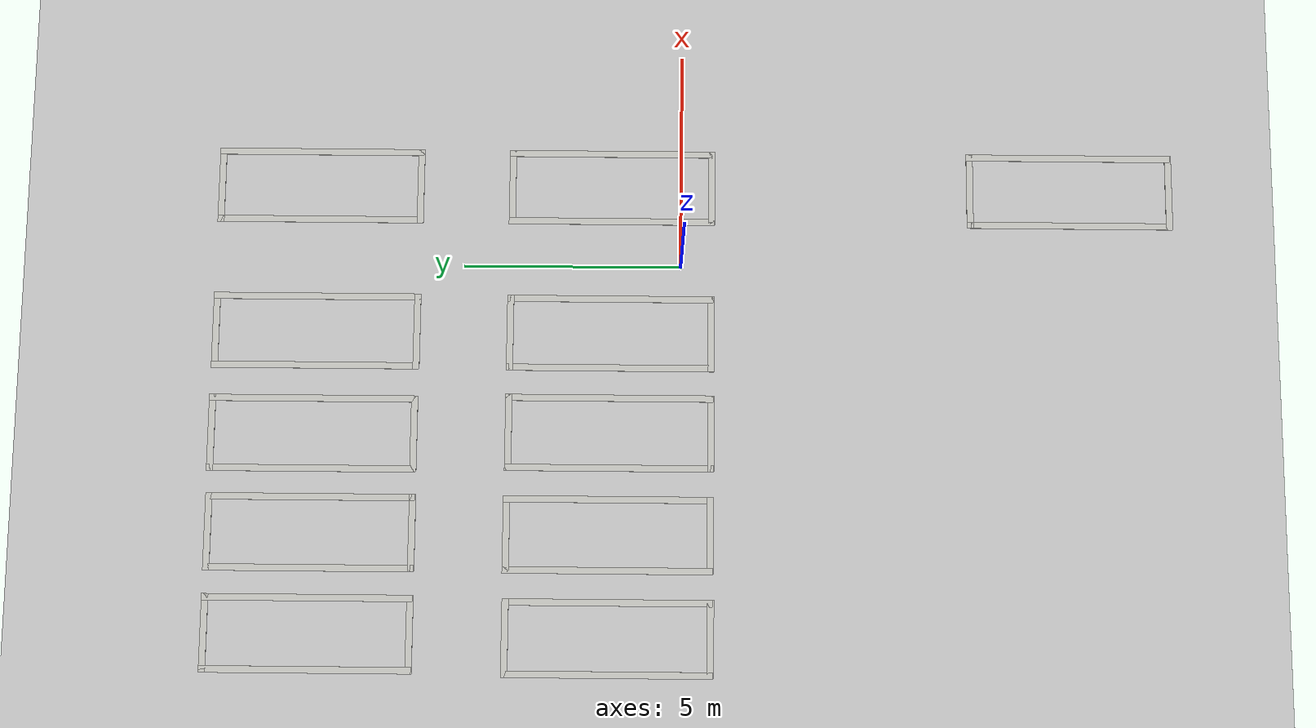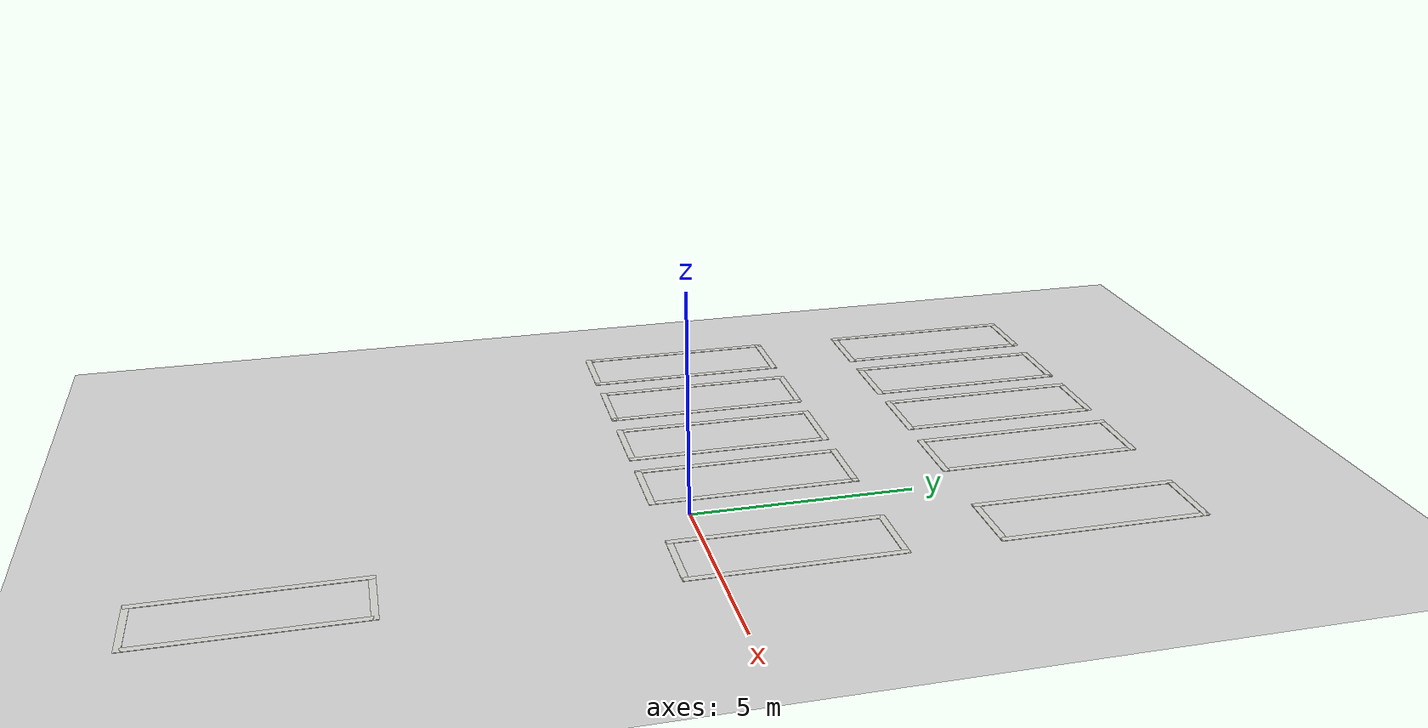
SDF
<sdf version="1.6">
 <world name="default">
  <model name="ground_plane">
   <static>1</static>
   <link name="link">
    <collision name="collision">
     <geometry><plane><normal>0 0 1</normal><size>100 100</size></plane></geometry>
     <surface>
      <contact><collide_bitmask>65535</collide_bitmask></contact>
      <friction><ode><mu>100</mu><mu2>50</mu2></ode></friction>
     </surface>
    </collision>
    <visual name="visual">
     <cast_shadows>0</cast_shadows>
     <geometry><plane><normal>0 0 1</normal><size>100 100</size></plane></geometry>
     <material>
      <script><uri>file://media/materials/scripts/gazebo.material</uri><name>Gazebo/Grey</name></script>
     </material>
    </visual>
   </link>
  </model>
  <model name="box_front">
   <pose>-8.45362 1.60304 0 0 -0 0</pose>
   <link name="Wall_3">
    <collision name="Wall_3_Collision"><geometry><box><size>0 0 0</size></box></geometry></collision>
    <visual name="Wall_3_Visual">
     <geometry><box><size>1.75 0.15 0.01</size></box></geometry>
     <material>
      <script><uri>file://media/materials/scripts/gazebo.material</uri><name>Gazebo/CeilingTiled</name></script>
      <ambient>1 1 1 1</ambient>
     </material>
     <meta><layer>0</layer></meta>
    </visual>
    <pose>0 2.31006 0 0 -0 0</pose>
   </link>
   <link name="Wall_4">
    <collision name="Wall_4_Collision"><geometry><box><size>0 0 0</size></box></geometry></collision>
    <visual name="Wall_4_Visual">
     <geometry><box><size>4.75 0.15 0.01</size></box></geometry>
     <material>
      <script><uri>file://media/materials/scripts/gazebo.material</uri><name>Gazebo/CeilingTiled</name></script>
      <ambient>1 1 1 1</ambient>
     </material>
     <meta><layer>0</layer></meta>
    </visual>
    <pose>0.8 0.010056 0 0 -0 -1.5708</pose>
   </link>
   <link name="Wall_5">
    <collision name="Wall_5_Collision">
     <geometry><box><size>0 0 0</size></box></geometry>
     <pose>0 0 1.25 0 -0 0</pose>
    </collision>
    <visual name="Wall_5_Visual">
     <geometry><box><size>1.75 0.15 0.01</size></box></geometry>
     <material>
      <script><uri>file://media/materials/scripts/gazebo.material</uri><name>Gazebo/CeilingTiled</name></script>
      <ambient>1 1 1 1</ambient>
     </material>
     <meta><layer>0</layer></meta>
    </visual>
    <pose>0 -2.31006 0 0 -0 3.14159</pose>
   </link>
   <link name="Wall_7">
    <collision name="Wall_7_Collision">
     <geometry><box><size>0 0 0</size></box></geometry>
     <pose>0 0 1.25 0 -0 0</pose>
    </collision>
    <visual name="Wall_7_Visual">
     <geometry><box><size>4.75 0.15 0.01</size></box></geometry>
     <material>
      <script><uri>file://media/materials/scripts/gazebo.material</uri><name>Gazebo/CeilingTiled</name></script>
      <ambient>1 1 1 1</ambient>
     </material>
     <meta><layer>0</layer></meta>
    </visual>
    <pose>-0.8 0.010056 0 0 -0 -1.5708</pose>
   </link>
   <static>1</static>
  </model>
  <model name="box_front_0">
   <pose>-6.13833 1.61718 0 0 -0 0</pose>
   <link name="Wall_3">
    <collision name="Wall_3_Collision"><geometry><box><size>0 0 0</size></box></geometry></collision>
    <visual name="Wall_3_Visual">
     <geometry><box><size>1.75 0.15 0.01</size></box></geometry>
     <material>
      <script><uri>file://media/materials/scripts/gazebo.material</uri><name>Gazebo/CeilingTiled</name></script>
      <ambient>1 1 1 1</ambient>
     </material>
     <meta><layer>0</layer></meta>
    </visual>
    <pose>0 2.31006 0 0 -0 0</pose>
   </link>
   <link name="Wall_4">
    <collision name="Wall_4_Collision"><geometry><box><size>0 0 0</size></box></geometry></collision>
    <visual name="Wall_4_Visual">
     <geometry><box><size>4.75 0.15 0.01</size></box></geometry>
     <material>
      <script><uri>file://media/materials/scripts/gazebo.material</uri><name>Gazebo/CeilingTiled</name></script>
      <ambient>1 1 1 1</ambient>
     </material>
     <meta><layer>0</layer></meta>
    </visual>
    <pose>0.8 0.010056 0 0 -0 -1.5708</pose>
   </link>
   <link name="Wall_5">
    <collision name="Wall_5_Collision">
     <geometry><box><size>0 0 0</size></box></geometry>
     <pose>0 0 1.25 0 -0 0</pose>
    </collision>
    <visual name="Wall_5_Visual">
     <geometry><box><size>1.75 0.15 0.01</size></box></geometry>
     <material>
      <script><uri>file://media/materials/scripts/gazebo.material</uri><name>Gazebo/CeilingTiled</name></script>
      <ambient>1 1 1 1</ambient>
     </material>
     <meta><layer>0</layer></meta>
    </visual>
    <pose>0 -2.31006 0 0 -0 3.14159</pose>
   </link>
   <link name="Wall_7">
    <collision name="Wall_7_Collision">
     <geometry><box><size>0 0 0</size></box></geometry>
     <pose>0 0 1.25 0 -0 0</pose>
    </collision>
    <visual name="Wall_7_Visual">
     <geometry><box><size>4.75 0.15 0.01</size></box></geometry>
     <material>
      <script><uri>file://media/materials/scripts/gazebo.material</uri><name>Gazebo/CeilingTiled</name></script>
      <ambient>1 1 1 1</ambient>
     </material>
     <meta><layer>0</layer></meta>
    </visual>
    <pose>-0.8 0.010056 0 0 -0 -1.5708</pose>
   </link>
   <static>1</static>
  </model>
  <model name="box_front_1">
   <pose>-3.82381 1.6108 0 0 -0 0</pose>
   <link name="Wall_3">
    <collision name="Wall_3_Collision"><geometry><box><size>0 0 0</size></box></geometry></collision>
    <visual name="Wall_3_Visual">
     <geometry><box><size>1.75 0.15 0.01</size></box></geometry>
     <material>
      <script><uri>file://media/materials/scripts/gazebo.material</uri><name>Gazebo/CeilingTiled</name></script>
      <ambient>1 1 1 1</ambient>
     </material>
     <meta><layer>0</layer></meta>
    </visual>
    <pose>0 2.31006 0 0 -0 0</pose>
   </link>
   <link name="Wall_4">
    <collision name="Wall_4_Collision"><geometry><box><size>0 0 0</size></box></geometry></collision>
    <visual name="Wall_4_Visual">
     <geometry><box><size>4.75 0.15 0.01</size></box></geometry>
     <material>
      <script><uri>file://media/materials/scripts/gazebo.material</uri><name>Gazebo/CeilingTiled</name></script>
      <ambient>1 1 1 1</ambient>
     </material>
     <meta><layer>0</layer></meta>
    </visual>
    <pose>0.8 0.010056 0 0 -0 -1.5708</pose>
   </link>
   <link name="Wall_5">
    <collision name="Wall_5_Collision">
     <geometry><box><size>0 0 0</size></box></geometry>
     <pose>0 0 1.25 0 -0 0</pose>
    </collision>
    <visual name="Wall_5_Visual">
     <geometry><box><size>1.75 0.15 0.01</size></box></geometry>
     <material>
      <script><uri>file://media/materials/scripts/gazebo.material</uri><name>Gazebo/CeilingTiled</name></script>
      <ambient>1 1 1 1</ambient>
     </material>
     <meta><layer>0</layer></meta>
    </visual>
    <pose>0 -2.31006 0 0 -0 3.14159</pose>
   </link>
   <link name="Wall_7">
    <collision name="Wall_7_Collision">
     <geometry><box><size>0 0 0</size></box></geometry>
     <pose>0 0 1.25 0 -0 0</pose>
    </collision>
    <visual name="Wall_7_Visual">
     <geometry><box><size>4.75 0.15 0.01</size></box></geometry>
     <material>
      <script><uri>file://media/materials/scripts/gazebo.material</uri><name>Gazebo/CeilingTiled</name></script>
      <ambient>1 1 1 1</ambient>
     </material>
     <meta><layer>0</layer></meta>
    </visual>
    <pose>-0.8 0.010056 0 0 -0 -1.5708</pose>
   </link>
   <static>1</static>
  </model>
  <model name="box_front_2">
   <pose>-1.52601 1.61411 0 0 -0 0</pose>
   <link name="Wall_3">
    <collision name="Wall_3_Collision"><geometry><box><size>0 0 0</size></box></geometry></collision>
    <visual name="Wall_3_Visual">
     <geometry><box><size>1.75 0.15 0.01</size></box></geometry>
     <material>
      <script><uri>file://media/materials/scripts/gazebo.material</uri><name>Gazebo/CeilingTiled</name></script>
      <ambient>1 1 1 1</ambient>
     </material>
     <meta><layer>0</layer></meta>
    </visual>
    <pose>0 2.31006 0 0 -0 0</pose>
   </link>
   <link name="Wall_4">
    <collision name="Wall_4_Collision"><geometry><box><size>0 0 0</size></box></geometry></collision>
    <visual name="Wall_4_Visual">
     <geometry><box><size>4.75 0.15 0.01</size></box></geometry>
     <material>
      <script><uri>file://media/materials/scripts/gazebo.material</uri><name>Gazebo/CeilingTiled</name></script>
      <ambient>1 1 1 1</ambient>
     </material>
     <meta><layer>0</layer></meta>
    </visual>
    <pose>0.8 0.010056 0 0 -0 -1.5708</pose>
   </link>
   <link name="Wall_5">
    <collision name="Wall_5_Collision">
     <geometry><box><size>0 0 0</size></box></geometry>
     <pose>0 0 1.25 0 -0 0</pose>
    </collision>
    <visual name="Wall_5_Visual">
     <geometry><box><size>1.75 0.15 0.01</size></box></geometry>
     <material>
      <script><uri>file://media/materials/scripts/gazebo.material</uri><name>Gazebo/CeilingTiled</name></script>
      <ambient>1 1 1 1</ambient>
     </material>
     <meta><layer>0</layer></meta>
    </visual>
    <pose>0 -2.31006 0 0 -0 3.14159</pose>
   </link>
   <link name="Wall_7">
    <collision name="Wall_7_Collision">
     <geometry><box><size>0 0 0</size></box></geometry>
     <pose>0 0 1.25 0 -0 0</pose>
    </collision>
    <visual name="Wall_7_Visual">
     <geometry><box><size>4.75 0.15 0.01</size></box></geometry>
     <material>
      <script><uri>file://media/materials/scripts/gazebo.material</uri><name>Gazebo/CeilingTiled</name></script>
      <ambient>1 1 1 1</ambient>
     </material>
     <meta><layer>0</layer></meta>
    </visual>
    <pose>-0.8 0.010056 0 0 -0 -1.5708</pose>
   </link>
   <static>1</static>
  </model>
  <model name="box_front_2_clone">
   <pose>-1.5174 8.37634 0 0 -0 0</pose>
   <link name="Wall_3">
    <collision name="Wall_3_Collision"><geometry><box><size>0 0 0</size></box></geometry></collision>
    <visual name="Wall_3_Visual">
     <geometry><box><size>1.75 0.15 0.01</size></box></geometry>
     <material>
      <script><uri>file://media/materials/scripts/gazebo.material</uri><name>Gazebo/CeilingTiled</name></script>
      <ambient>1 1 1 1</ambient>
     </material>
     <meta><layer>0</layer></meta>
    </visual>
    <pose>0 2.31006 0 0 -0 0</pose>
   </link>
   <link name="Wall_4">
    <collision name="Wall_4_Collision"><geometry><box><size>0 0 0</size></box></geometry></collision>
    <visual name="Wall_4_Visual">
     <geometry><box><size>4.75 0.15 0.01</size></box></geometry>
     <material>
      <script><uri>file://media/materials/scripts/gazebo.material</uri><name>Gazebo/CeilingTiled</name></script>
      <ambient>1 1 1 1</ambient>
     </material>
     <meta><layer>0</layer></meta>
    </visual>
    <pose>0.8 0.010056 0 0 -0 -1.5708</pose>
   </link>
   <link name="Wall_5">
    <collision name="Wall_5_Collision">
     <geometry><box><size>0 0 0</size></box></geometry>
     <pose>0 0 1.25 0 -0 0</pose>
    </collision>
    <visual name="Wall_5_Visual">
     <geometry><box><size>1.75 0.15 0.01</size></box></geometry>
     <material>
      <script><uri>file://media/materials/scripts/gazebo.material</uri><name>Gazebo/CeilingTiled</name></script>
      <ambient>1 1 1 1</ambient>
     </material>
     <meta><layer>0</layer></meta>
    </visual>
    <pose>0 -2.31006 0 0 -0 3.14159</pose>
   </link>
   <link name="Wall_7">
    <collision name="Wall_7_Collision">
     <geometry><box><size>0 0 0</size></box></geometry>
     <pose>0 0 1.25 0 -0 0</pose>
    </collision>
    <visual name="Wall_7_Visual">
     <geometry><box><size>4.75 0.15 0.01</size></box></geometry>
     <material>
      <script><uri>file://media/materials/scripts/gazebo.material</uri><name>Gazebo/CeilingTiled</name></script>
      <ambient>1 1 1 1</ambient>
     </material>
     <meta><layer>0</layer></meta>
    </visual>
    <pose>-0.8 0.010056 0 0 -0 -1.5708</pose>
   </link>
   <static>1</static>
  </model>
  <model name="box_front_2_clone_clone">
   <pose>-3.88353 8.38304 0 0 -0 0</pose>
   <link name="Wall_3">
    <collision name="Wall_3_Collision"><geometry><box><size>0 0 0</size></box></geometry></collision>
    <visual name="Wall_3_Visual">
     <geometry><box><size>1.75 0.15 0.01</size></box></geometry>
     <material>
      <script><uri>file://media/materials/scripts/gazebo.material</uri><name>Gazebo/CeilingTiled</name></script>
      <ambient>1 1 1 1</ambient>
     </material>
     <meta><layer>0</layer></meta>
    </visual>
    <pose>0 2.31006 0 0 -0 0</pose>
   </link>
   <link name="Wall_4">
    <collision name="Wall_4_Collision"><geometry><box><size>0 0 0</size></box></geometry></collision>
    <visual name="Wall_4_Visual">
     <geometry><box><size>4.75 0.15 0.01</size></box></geometry>
     <material>
      <script><uri>file://media/materials/scripts/gazebo.material</uri><name>Gazebo/CeilingTiled</name></script>
      <ambient>1 1 1 1</ambient>
     </material>
     <meta><layer>0</layer></meta>
    </visual>
    <pose>0.8 0.010056 0 0 -0 -1.5708</pose>
   </link>
   <link name="Wall_5">
    <collision name="Wall_5_Collision">
     <geometry><box><size>0 0 0</size></box></geometry>
     <pose>0 0 1.25 0 -0 0</pose>
    </collision>
    <visual name="Wall_5_Visual">
     <geometry><box><size>1.75 0.15 0.01</size></box></geometry>
     <material>
      <script><uri>file://media/materials/scripts/gazebo.material</uri><name>Gazebo/CeilingTiled</name></script>
      <ambient>1 1 1 1</ambient>
     </material>
     <meta><layer>0</layer></meta>
    </visual>
    <pose>0 -2.31006 0 0 -0 3.14159</pose>
   </link>
   <link name="Wall_7">
    <collision name="Wall_7_Collision">
     <geometry><box><size>0 0 0</size></box></geometry>
     <pose>0 0 1.25 0 -0 0</pose>
    </collision>
    <visual name="Wall_7_Visual">
     <geometry><box><size>4.75 0.15 0.01</size></box></geometry>
     <material>
      <script><uri>file://media/materials/scripts/gazebo.material</uri><name>Gazebo/CeilingTiled</name></script>
      <ambient>1 1 1 1</ambient>
     </material>
     <meta><layer>0</layer></meta>
    </visual>
    <pose>-0.8 0.010056 0 0 -0 -1.5708</pose>
   </link>
   <static>1</static>
  </model>
  <model name="box_front_2_clone_clone_clone">
   <pose>-6.1307 8.36924 0 0 -0 0</pose>
   <link name="Wall_3">
    <collision name="Wall_3_Collision"><geometry><box><size>0 0 0</size></box></geometry></collision>
    <visual name="Wall_3_Visual">
     <geometry><box><size>1.75 0.15 0.01</size></box></geometry>
     <material>
      <script><uri>file://media/materials/scripts/gazebo.material</uri><name>Gazebo/CeilingTiled</name></script>
      <ambient>1 1 1 1</ambient>
     </material>
     <meta><layer>0</layer></meta>
    </visual>
    <pose>0 2.31006 0 0 -0 0</pose>
   </link>
   <link name="Wall_4">
    <collision name="Wall_4_Collision"><geometry><box><size>0 0 0</size></box></geometry></collision>
    <visual name="Wall_4_Visual">
     <geometry><box><size>4.75 0.15 0.01</size></box></geometry>
     <material>
      <script><uri>file://media/materials/scripts/gazebo.material</uri><name>Gazebo/CeilingTiled</name></script>
      <ambient>1 1 1 1</ambient>
     </material>
     <meta><layer>0</layer></meta>
    </visual>
    <pose>0.8 0.010056 0 0 -0 -1.5708</pose>
   </link>
   <link name="Wall_5">
    <collision name="Wall_5_Collision">
     <geometry><box><size>0 0 0</size></box></geometry>
     <pose>0 0 1.25 0 -0 0</pose>
    </collision>
    <visual name="Wall_5_Visual">
     <geometry><box><size>1.75 0.15 0.01</size></box></geometry>
     <material>
      <script><uri>file://media/materials/scripts/gazebo.material</uri><name>Gazebo/CeilingTiled</name></script>
      <ambient>1 1 1 1</ambient>
     </material>
     <meta><layer>0</layer></meta>
    </visual>
    <pose>0 -2.31006 0 0 -0 3.14159</pose>
   </link>
   <link name="Wall_7">
    <collision name="Wall_7_Collision">
     <geometry><box><size>0 0 0</size></box></geometry>
     <pose>0 0 1.25 0 -0 0</pose>
    </collision>
    <visual name="Wall_7_Visual">
     <geometry><box><size>4.75 0.15 0.01</size></box></geometry>
     <material>
      <script><uri>file://media/materials/scripts/gazebo.material</uri><name>Gazebo/CeilingTiled</name></script>
      <ambient>1 1 1 1</ambient>
     </material>
     <meta><layer>0</layer></meta>
    </visual>
    <pose>-0.8 0.010056 0 0 -0 -1.5708</pose>
   </link>
   <static>1</static>
  </model>
  <model name="box_front_2_clone_clone_clone_0">
   <pose>-8.39646 8.36304 0 0 -0 0</pose>
   <link name="Wall_3">
    <collision name="Wall_3_Collision"><geometry><box><size>0 0 0</size></box></geometry></collision>
    <visual name="Wall_3_Visual">
     <geometry><box><size>1.75 0.15 0.01</size></box></geometry>
     <material>
      <script><uri>file://media/materials/scripts/gazebo.material</uri><name>Gazebo/CeilingTiled</name></script>
      <ambient>1 1 1 1</ambient>
     </material>
     <meta><layer>0</layer></meta>
    </visual>
    <pose>0 2.31006 0 0 -0 0</pose>
   </link>
   <link name="Wall_4">
    <collision name="Wall_4_Collision"><geometry><box><size>0 0 0</size></box></geometry></collision>
    <visual name="Wall_4_Visual">
     <geometry><box><size>4.75 0.15 0.01</size></box></geometry>
     <material>
      <script><uri>file://media/materials/scripts/gazebo.material</uri><name>Gazebo/CeilingTiled</name></script>
      <ambient>1 1 1 1</ambient>
     </material>
     <meta><layer>0</layer></meta>
    </visual>
    <pose>0.8 0.010056 0 0 -0 -1.5708</pose>
   </link>
   <link name="Wall_5">
    <collision name="Wall_5_Collision">
     <geometry><box><size>0 0 0</size></box></geometry>
     <pose>0 0 1.25 0 -0 0</pose>
    </collision>
    <visual name="Wall_5_Visual">
     <geometry><box><size>1.75 0.15 0.01</size></box></geometry>
     <material>
      <script><uri>file://media/materials/scripts/gazebo.material</uri><name>Gazebo/CeilingTiled</name></script>
      <ambient>1 1 1 1</ambient>
     </material>
     <meta><layer>0</layer></meta>
    </visual>
    <pose>0 -2.31006 0 0 -0 3.14159</pose>
   </link>
   <link name="Wall_7">
    <collision name="Wall_7_Collision">
     <geometry><box><size>0 0 0</size></box></geometry>
     <pose>0 0 1.25 0 -0 0</pose>
    </collision>
    <visual name="Wall_7_Visual">
     <geometry><box><size>4.75 0.15 0.01</size></box></geometry>
     <material>
      <script><uri>file://media/materials/scripts/gazebo.material</uri><name>Gazebo/CeilingTiled</name></script>
      <ambient>1 1 1 1</ambient>
     </material>
     <meta><layer>0</layer></meta>
    </visual>
    <pose>-0.8 0.010056 0 0 -0 -1.5708</pose>
   </link>
   <static>1</static>
  </model>
  <model name="box_front_clone">
   <pose>2.40385 10.4581 -0.722555 0 -0 0</pose>
   <link name="Wall_3">
    <collision name="Wall_3_Collision"><geometry><box><size>0 0 0</size></box></geometry></collision>
    <visual name="Wall_3_Visual">
     <geometry><box><size>1.75 0.15 0.01</size></box></geometry>
     <material>
      <script><uri>file://media/materials/scripts/gazebo.material</uri><name>Gazebo/CeilingTiled</name></script>
      <ambient>1 1 1 1</ambient>
     </material>
     <meta><layer>0</layer></meta>
    </visual>
    <pose>0 2.31006 0 0 -0 0</pose>
   </link>
   <link name="Wall_4">
    <collision name="Wall_4_Collision"><geometry><box><size>0 0 0</size></box></geometry></collision>
    <visual name="Wall_4_Visual">
     <geometry><box><size>4.75 0.15 0.01</size></box></geometry>
     <material>
      <script><uri>file://media/materials/scripts/gazebo.material</uri><name>Gazebo/CeilingTiled</name></script>
      <ambient>1 1 1 1</ambient>
     </material>
     <meta><layer>0</layer></meta>
    </visual>
    <pose>0.8 0.010056 0 0 -0 -1.5708</pose>
   </link>
   <link name="Wall_5">
    <collision name="Wall_5_Collision">
     <geometry><box><size>0 0 0</size></box></geometry>
     <pose>0 0 1.25 0 -0 0</pose>
    </collision>
    <visual name="Wall_5_Visual">
     <geometry><box><size>1.75 0.15 0.01</size></box></geometry>
     <material>
      <script><uri>file://media/materials/scripts/gazebo.material</uri><name>Gazebo/CeilingTiled</name></script>
      <ambient>1 1 1 1</ambient>
     </material>
     <meta><layer>0</layer></meta>
    </visual>
    <pose>0 -2.31006 0 0 -0 3.14159</pose>
   </link>
   <link name="Wall_7">
    <collision name="Wall_7_Collision">
     <geometry><box><size>0 0 0</size></box></geometry>
     <pose>0 0 1.25 0 -0 0</pose>
    </collision>
    <visual name="Wall_7_Visual">
     <geometry><box><size>4.75 0.15 0.01</size></box></geometry>
     <material>
      <script><uri>file://media/materials/scripts/gazebo.material</uri><name>Gazebo/CeilingTiled</name></script>
      <ambient>1 1 1 1</ambient>
     </material>
     <meta><layer>0</layer></meta>
    </visual>
    <pose>-0.8 0.010056 0 0 -0 -1.5708</pose>
   </link>
   <static>1</static>
  </model>
  <model name="box_front_clone_0">
   <pose>1.89898 1.61696 0 0 -0 0</pose>
   <link name="Wall_3">
    <collision name="Wall_3_Collision"><geometry><box><size>0 0 0</size></box></geometry></collision>
    <visual name="Wall_3_Visual">
     <geometry><box><size>1.75 0.15 0.01</size></box></geometry>
     <material>
      <script><uri>file://media/materials/scripts/gazebo.material</uri><name>Gazebo/CeilingTiled</name></script>
      <ambient>1 1 1 1</ambient>
     </material>
     <meta><layer>0</layer></meta>
    </visual>
    <pose>0 2.31006 0 0 -0 0</pose>
   </link>
   <link name="Wall_4">
    <collision name="Wall_4_Collision"><geometry><box><size>0 0 0</size></box></geometry></collision>
    <visual name="Wall_4_Visual">
     <geometry><box><size>4.75 0.15 0.01</size></box></geometry>
     <material>
      <script><uri>file://media/materials/scripts/gazebo.material</uri><name>Gazebo/CeilingTiled</name></script>
      <ambient>1 1 1 1</ambient>
     </material>
     <meta><layer>0</layer></meta>
    </visual>
    <pose>0.8 0.010056 0 0 -0 -1.5708</pose>
   </link>
   <link name="Wall_5">
    <collision name="Wall_5_Collision">
     <geometry><box><size>0 0 0</size></box></geometry>
     <pose>0 0 1.25 0 -0 0</pose>
    </collision>
    <visual name="Wall_5_Visual">
     <geometry><box><size>1.75 0.15 0.01</size></box></geometry>
     <material>
      <script><uri>file://media/materials/scripts/gazebo.material</uri><name>Gazebo/CeilingTiled</name></script>
      <ambient>1 1 1 1</ambient>
     </material>
     <meta><layer>0</layer></meta>
    </visual>
    <pose>0 -2.31006 0 0 -0 3.14159</pose>
   </link>
   <link name="Wall_7">
    <collision name="Wall_7_Collision">
     <geometry><box><size>0 0 0</size></box></geometry>
     <pose>0 0 1.25 0 -0 0</pose>
    </collision>
    <visual name="Wall_7_Visual">
     <geometry><box><size>4.75 0.15 0.01</size></box></geometry>
     <material>
      <script><uri>file://media/materials/scripts/gazebo.material</uri><name>Gazebo/CeilingTiled</name></script>
      <ambient>1 1 1 1</ambient>
     </material>
     <meta><layer>0</layer></meta>
    </visual>
    <pose>-0.8 0.010056 0 0 -0 -1.5708</pose>
   </link>
   <static>1</static>
  </model>
  <model name="box_front_clone_4">
   <pose>1.89767 8.37234 0 0 -0 0</pose>
   <link name="Wall_3">
    <collision name="Wall_3_Collision"><geometry><box><size>0 0 0</size></box></geometry></collision>
    <visual name="Wall_3_Visual">
     <geometry><box><size>1.75 0.15 0.01</size></box></geometry>
     <material>
      <script><uri>file://media/materials/scripts/gazebo.material</uri><name>Gazebo/CeilingTiled</name></script>
      <ambient>1 1 1 1</ambient>
     </material>
     <meta><layer>0</layer></meta>
    </visual>
    <pose>0 2.31006 0 0 -0 0</pose>
   </link>
   <link name="Wall_4">
    <collision name="Wall_4_Collision"><geometry><box><size>0 0 0</size></box></geometry></collision>
    <visual name="Wall_4_Visual">
     <geometry><box><size>4.75 0.15 0.01</size></box></geometry>
     <material>
      <script><uri>file://media/materials/scripts/gazebo.material</uri><name>Gazebo/CeilingTiled</name></script>
      <ambient>1 1 1 1</ambient>
     </material>
     <meta><layer>0</layer></meta>
    </visual>
    <pose>0.8 0.010056 0 0 -0 -1.5708</pose>
   </link>
   <link name="Wall_5">
    <collision name="Wall_5_Collision">
     <geometry><box><size>0 0 0</size></box></geometry>
     <pose>0 0 1.25 0 -0 0</pose>
    </collision>
    <visual name="Wall_5_Visual">
     <geometry><box><size>1.75 0.15 0.01</size></box></geometry>
     <material>
      <script><uri>file://media/materials/scripts/gazebo.material</uri><name>Gazebo/CeilingTiled</name></script>
      <ambient>1 1 1 1</ambient>
     </material>
     <meta><layer>0</layer></meta>
    </visual>
    <pose>0 -2.31006 0 0 -0 3.14159</pose>
   </link>
   <link name="Wall_7">
    <collision name="Wall_7_Collision">
     <geometry><box><size>0 0 0</size></box></geometry>
     <pose>0 0 1.25 0 -0 0</pose>
    </collision>
    <visual name="Wall_7_Visual">
     <geometry><box><size>4.75 0.15 0.01</size></box></geometry>
     <material>
      <script><uri>file://media/materials/scripts/gazebo.material</uri><name>Gazebo/CeilingTiled</name></script>
      <ambient>1 1 1 1</ambient>
     </material>
     <meta><layer>0</layer></meta>
    </visual>
    <pose>-0.8 0.010056 0 0 -0 -1.5708</pose>
   </link>
   <static>1</static>
  </model>
  <model name="box_front_clone_8">
   <pose>1.88588 -9.00108 0 0 -0 0</pose>
   <link name="Wall_3">
    <collision name="Wall_3_Collision"><geometry><box><size>0 0 0</size></box></geometry></collision>
    <visual name="Wall_3_Visual">
     <geometry><box><size>1.75 0.15 0.01</size></box></geometry>
     <material>
      <script><uri>file://media/materials/scripts/gazebo.material</uri><name>Gazebo/CeilingTiled</name></script>
      <ambient>1 1 1 1</ambient>
     </material>
     <meta><layer>0</layer></meta>
    </visual>
    <pose>0 2.31006 0 0 -0 0</pose>
   </link>
   <link name="Wall_4">
    <collision name="Wall_4_Collision"><geometry><box><size>0 0 0</size></box></geometry></collision>
    <visual name="Wall_4_Visual">
     <geometry><box><size>4.75 0.15 0.01</size></box></geometry>
     <material>
      <script><uri>file://media/materials/scripts/gazebo.material</uri><name>Gazebo/CeilingTiled</name></script>
      <ambient>1 1 1 1</ambient>
     </material>
     <meta><layer>0</layer></meta>
    </visual>
    <pose>0.8 0.010056 0 0 -0 -1.5708</pose>
   </link>
   <link name="Wall_5">
    <collision name="Wall_5_Collision">
     <geometry><box><size>0 0 0</size></box></geometry>
     <pose>0 0 1.25 0 -0 0</pose>
    </collision>
    <visual name="Wall_5_Visual">
     <geometry><box><size>1.75 0.15 0.01</size></box></geometry>
     <material>
      <script><uri>file://media/materials/scripts/gazebo.material</uri><name>Gazebo/CeilingTiled</name></script>
      <ambient>1 1 1 1</ambient>
     </material>
     <meta><layer>0</layer></meta>
    </visual>
    <pose>0 -2.31006 0 0 -0 3.14159</pose>
   </link>
   <link name="Wall_7">
    <collision name="Wall_7_Collision">
     <geometry><box><size>0 0 0</size></box></geometry>
     <pose>0 0 1.25 0 -0 0</pose>
    </collision>
    <visual name="Wall_7_Visual">
     <geometry><box><size>4.75 0.15 0.01</size></box></geometry>
     <material>
      <script><uri>file://media/materials/scripts/gazebo.material</uri><name>Gazebo/CeilingTiled</name></script>
      <ambient>1 1 1 1</ambient>
     </material>
     <meta><layer>0</layer></meta>
    </visual>
    <pose>-0.8 0.010056 0 0 -0 -1.5708</pose>
   </link>
   <static>1</static>
  </model>
 </world>
</sdf>
